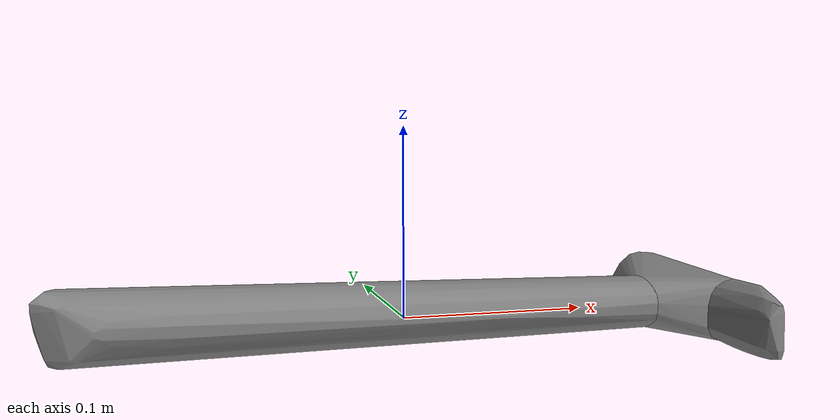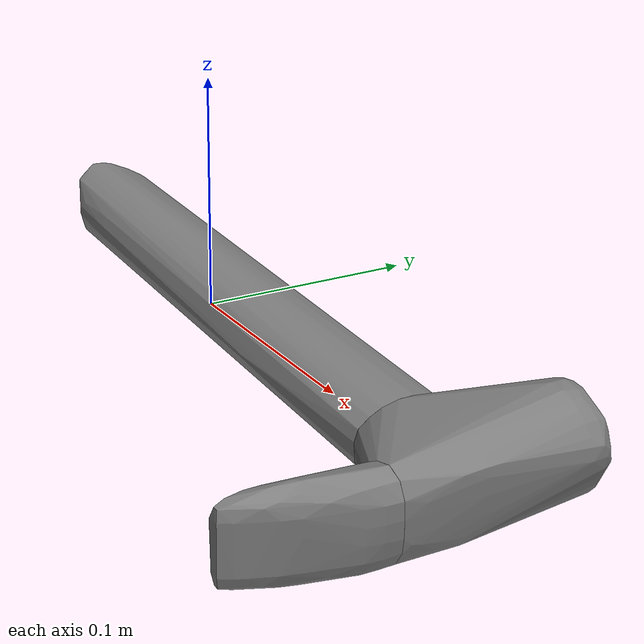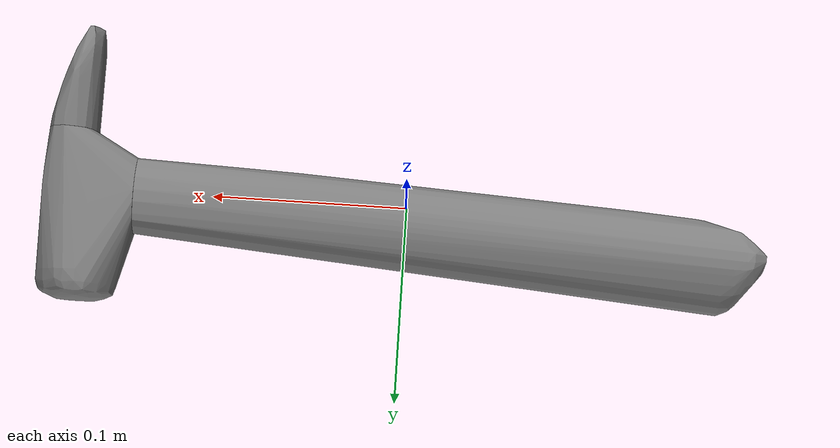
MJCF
<mujoco model="decomposed">
  <compiler angle="radian" meshdir="assets" />
  <default>
    <default class="visual">
      <geom priority="1" type="mesh" contype="1" conaffinity="1" friction=".5" solimp=".99 .99 .01" solref=".001 1" />
    </default>
  </default>
  <asset>
    <mesh name="n0" file="../../meshh/hummer/coacd/decomposed/decomposed_0.obj" scale="0.0010000000474974513 0.0010000000474974513 0.0010000000474974513" />
    <mesh name="n1" file="../../meshh/hummer/coacd/decomposed/decomposed_1.obj" scale="0.0010000000474974513 0.0010000000474974513 0.0010000000474974513" />
    <mesh name="n2" file="../../meshh/hummer/coacd/decomposed/decomposed_2.obj" scale="0.0010000000474974513 0.0010000000474974513 0.0010000000474974513" />
  </asset>
  <worldbody>
    <body name="decomposed">
      <joint type="free" />
      <geom mesh="n0" class="visual" />
      <geom mesh="n1" class="visual" />
      <geom mesh="n2" class="visual" />
    </body>
  </worldbody>
</mujoco>
